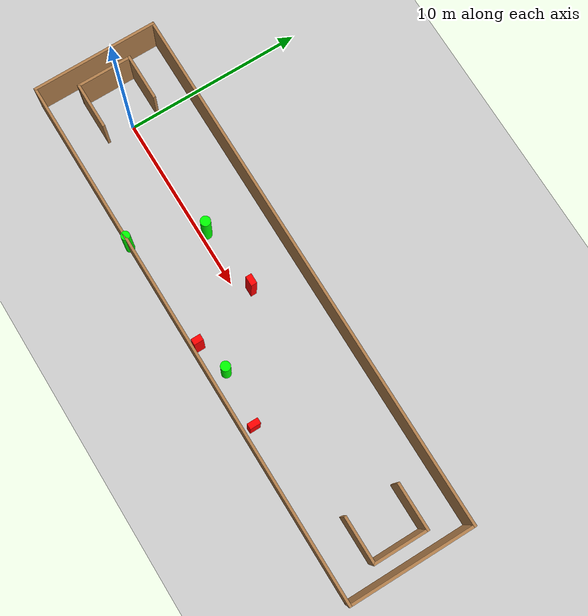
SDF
<sdf version="1.7">
 <world name="default">
  <light name="sun" type="directional">
   <pose>0 0 10 0 -0 0</pose>
   <diffuse>0.8 0.8 0.8 1</diffuse>
   <specular>0.2 0.2 0.2 1</specular>
   <attenuation>
    <range>1000</range>
    <constant>0.9</constant>
    <linear>0.01</linear>
    <quadratic>0.001</quadratic>
   </attenuation>
   <direction>-0.5 0.1 -0.9</direction>
   <spot><inner_angle>0</inner_angle><outer_angle>0</outer_angle><falloff>0</falloff></spot>
  </light>
  <model name="ground_plane">
   <static>1</static>
   <link name="link">
    <collision name="collision">
     <geometry><plane><normal>0 0 1</normal><size>100 100</size></plane></geometry>
     <surface>
      <contact><collide_bitmask>65535</collide_bitmask></contact>
      <friction><ode><mu>100</mu><mu2>50</mu2></ode></friction>
     </surface>
    </collision>
    <visual name="visual">
     <cast_shadows>0</cast_shadows>
     <geometry><plane><normal>0 0 1</normal><size>100 100</size></plane></geometry>
     <material>
      <script><uri>file://media/materials/scripts/gazebo.material</uri><name>Gazebo/Grey</name></script>
     </material>
    </visual>
   </link>
  </model>
  <gravity>0 0 -9.8</gravity>
  <magnetic_field>6e-06 2.3e-05 -4.2e-05</magnetic_field>
  <atmosphere type="adiabatic"/>
  <physics type="ode">
   <max_step_size>0.001</max_step_size>
   <real_time_factor>1</real_time_factor>
   <real_time_update_rate>1000</real_time_update_rate>
  </physics>
  <scene><ambient>0.4 0.4 0.4 1</ambient><background>0.7 0.7 0.7 1</background><shadows>1</shadows></scene>
  <spherical_coordinates>
   <surface_model>EARTH_WGS84</surface_model>
   <latitude_deg>0</latitude_deg>
   <longitude_deg>0</longitude_deg>
   <elevation>0</elevation>
   <heading_deg>0</heading_deg>
  </spherical_coordinates>
  <model name="my_base_walls">
   <link name="Wall_0">
    <collision name="Wall_0_Collision">
     <geometry><box><size>7.15 0.15 2.5</size></box></geometry>
     <pose>0 0 1.25 0 -0 0</pose>
    </collision>
    <visual name="Wall_0_Visual">
     <pose>0 0 1.25 0 -0 0</pose>
     <geometry><box><size>7.15 0.15 2.5</size></box></geometry>
     <material>
      <script><uri>file://media/materials/scripts/gazebo.material</uri><name>Gazebo/Wood</name></script>
      <ambient>1 1 1 1</ambient>
     </material>
     <meta><layer>0</layer></meta>
    </visual>
    <pose>-15 0 0 0 -0 1.5708</pose>
   </link>
   <link name="Wall_10">
    <collision name="Wall_10_Collision">
     <geometry><box><size>2.65 0.15 2.5</size></box></geometry>
     <pose>0 0 1.25 0 -0 0</pose>
    </collision>
    <visual name="Wall_10_Visual">
     <pose>0 0 1.25 0 -0 0</pose>
     <geometry><box><size>2.65 0.15 2.5</size></box></geometry>
     <material>
      <script><uri>file://media/materials/scripts/gazebo.material</uri><name>Gazebo/Wood</name></script>
      <ambient>1 1 1 1</ambient>
     </material>
     <meta><layer>0</layer></meta>
    </visual>
    <pose>-12.75 -1.5 0 0 -0 0</pose>
   </link>
   <link name="Wall_12">
    <collision name="Wall_12_Collision">
     <geometry><box><size>2.65 0.15 2.5</size></box></geometry>
     <pose>0 0 1.25 0 -0 0</pose>
    </collision>
    <visual name="Wall_12_Visual">
     <pose>0 0 1.25 0 -0 0</pose>
     <geometry><box><size>2.65 0.15 2.5</size></box></geometry>
     <material>
      <script><uri>file://media/materials/scripts/gazebo.material</uri><name>Gazebo/Wood</name></script>
      <ambient>1 1 1 1</ambient>
     </material>
     <meta><layer>0</layer></meta>
    </visual>
    <pose>-12.75 1.5 0 0 -0 0</pose>
   </link>
   <link name="Wall_14">
    <collision name="Wall_14_Collision">
     <geometry><box><size>3.15 0.15 2.5</size></box></geometry>
     <pose>0 0 1.25 0 -0 0</pose>
    </collision>
    <visual name="Wall_14_Visual">
     <pose>0 0 1.25 0 -0 0</pose>
     <geometry><box><size>3.15 0.15 2.5</size></box></geometry>
     <material>
      <script><uri>file://media/materials/scripts/gazebo.material</uri><name>Gazebo/Wood</name></script>
      <ambient>1 1 1 1</ambient>
     </material>
     <meta><layer>0</layer></meta>
    </visual>
    <pose>14 0 0 0 -0 -1.5708</pose>
   </link>
   <link name="Wall_15">
    <collision name="Wall_15_Collision">
     <geometry><box><size>2.65 0.15 2.5</size></box></geometry>
     <pose>0 0 1.25 0 -0 0</pose>
    </collision>
    <visual name="Wall_15_Visual">
     <pose>0 0 1.25 0 -0 0</pose>
     <geometry><box><size>2.65 0.15 2.5</size></box></geometry>
     <material>
      <script><uri>file://media/materials/scripts/gazebo.material</uri><name>Gazebo/Wood</name></script>
      <ambient>1 1 1 1</ambient>
     </material>
     <meta><layer>0</layer></meta>
    </visual>
    <pose>12.75 -1.5 0 0 -0 3.14159</pose>
   </link>
   <link name="Wall_17">
    <collision name="Wall_17_Collision">
     <geometry><box><size>2.65 0.15 2.5</size></box></geometry>
     <pose>0 0 1.25 0 -0 0</pose>
    </collision>
    <visual name="Wall_17_Visual">
     <pose>0 0 1.25 0 -0 0</pose>
     <geometry><box><size>2.65 0.15 2.5</size></box></geometry>
     <material>
      <script><uri>file://media/materials/scripts/gazebo.material</uri><name>Gazebo/Wood</name></script>
      <ambient>1 1 1 1</ambient>
     </material>
     <meta><layer>0</layer></meta>
    </visual>
    <pose>12.75 1.5 0 0 -0 3.14159</pose>
   </link>
   <link name="Wall_2">
    <collision name="Wall_2_Collision">
     <geometry><box><size>30.15 0.15 2.5</size></box></geometry>
     <pose>0 0 1.25 0 -0 0</pose>
    </collision>
    <visual name="Wall_2_Visual">
     <pose>0 0 1.25 0 -0 0</pose>
     <geometry><box><size>30.15 0.15 2.5</size></box></geometry>
     <material>
      <script><uri>file://media/materials/scripts/gazebo.material</uri><name>Gazebo/Wood</name></script>
      <ambient>1 1 1 1</ambient>
     </material>
     <meta><layer>0</layer></meta>
    </visual>
    <pose>-0 -3.5 0 0 -0 0</pose>
   </link>
   <link name="Wall_4">
    <collision name="Wall_4_Collision">
     <geometry><box><size>30.15 0.15 2.5</size></box></geometry>
     <pose>0 0 1.25 0 -0 0</pose>
    </collision>
    <visual name="Wall_4_Visual">
     <pose>0 0 1.25 0 -0 0</pose>
     <geometry><box><size>30.15 0.15 2.5</size></box></geometry>
     <material>
      <script><uri>file://media/materials/scripts/gazebo.material</uri><name>Gazebo/Wood</name></script>
      <ambient>1 1 1 1</ambient>
     </material>
     <meta><layer>0</layer></meta>
    </visual>
    <pose>-0 3.5 0 0 -0 0</pose>
   </link>
   <link name="Wall_6">
    <collision name="Wall_6_Collision">
     <geometry><box><size>7.15 0.15 2.5</size></box></geometry>
     <pose>0 0 1.25 0 -0 0</pose>
    </collision>
    <visual name="Wall_6_Visual">
     <pose>0 0 1.25 0 -0 0</pose>
     <geometry><box><size>7.15 0.15 2.5</size></box></geometry>
     <material>
      <script><uri>file://media/materials/scripts/gazebo.material</uri><name>Gazebo/Wood</name></script>
      <ambient>1 1 1 1</ambient>
     </material>
     <meta><layer>0</layer></meta>
    </visual>
    <pose>15 0 0 0 -0 -1.5708</pose>
   </link>
   <link name="Wall_9">
    <collision name="Wall_9_Collision">
     <geometry><box><size>3.15 0.15 2.5</size></box></geometry>
     <pose>0 0 1.25 0 -0 0</pose>
    </collision>
    <visual name="Wall_9_Visual">
     <pose>0 0 1.25 0 -0 0</pose>
     <geometry><box><size>3.15 0.15 2.5</size></box></geometry>
     <material>
      <script><uri>file://media/materials/scripts/gazebo.material</uri><name>Gazebo/Wood</name></script>
      <ambient>1 1 1 1</ambient>
     </material>
     <meta><layer>0</layer></meta>
    </visual>
    <pose>-14 0 0 0 -0 -1.5708</pose>
   </link>
   <static>1</static>
   <pose>11.5 0 0 0 -0 0</pose>
  </model>
  <model name="cylinder1">
   <static>1</static>
   <link name="link">
    <inertial>
     <mass>1</mass>
     <inertia><ixx>0.5</ixx><ixy>0</ixy><ixz>0</ixz><iyy>0.5</iyy><iyz>0</iyz><izz>1</izz></inertia>
    </inertial>
    <collision name="collision">
     <geometry><cylinder><radius>0.2465025130866856</radius><length>2.5</length></cylinder></geometry>
    </collision>
    <visual name="visual">
     <geometry><cylinder><radius>0.2465025130866856</radius><length>2.5</length></cylinder></geometry>
     <material>
      <ambient>0 1 0 1</ambient>
      <diffuse>0 1 0 1</diffuse>
      <specular>0.1 0.1 0.1 1</specular>
      <emissive>0 0 0 0</emissive>
     </material>
    </visual>
   </link>
   <pose>5.646841156024184 -3.4711612586969207 1.25 0 0 0</pose>
  </model>
  <model name="cylinder2">
   <static>1</static>
   <link name="link">
    <inertial>
     <mass>1</mass>
     <inertia><ixx>0.5</ixx><ixy>0</ixy><ixz>0</ixz><iyy>0.5</iyy><iyz>0</iyz><izz>1</izz></inertia>
    </inertial>
    <collision name="collision">
     <geometry><cylinder><radius>0.2783348389449972</radius><length>2.5</length></cylinder></geometry>
    </collision>
    <visual name="visual">
     <geometry><cylinder><radius>0.2783348389449972</radius><length>2.5</length></cylinder></geometry>
     <material>
      <ambient>0 1 0 1</ambient>
      <diffuse>0 1 0 1</diffuse>
      <specular>0.1 0.1 0.1 1</specular>
      <emissive>0 0 0 0</emissive>
     </material>
    </visual>
   </link>
   <pose>7.0927311446613075 0.32570556049470056 1.25 0 0 0</pose>
  </model>
  <model name="cylinder3">
   <static>1</static>
   <link name="link">
    <inertial>
     <mass>1</mass>
     <inertia><ixx>0.5</ixx><ixy>0</ixy><ixz>0</ixz><iyy>0.5</iyy><iyz>0</iyz><izz>1</izz></inertia>
    </inertial>
    <collision name="collision">
     <geometry><cylinder><radius>0.26785576918335274</radius><length>2.5</length></cylinder></geometry>
    </collision>
    <visual name="visual">
     <geometry><cylinder><radius>0.26785576918335274</radius><length>2.5</length></cylinder></geometry>
     <material>
      <ambient>0 1 0 1</ambient>
      <diffuse>0 1 0 1</diffuse>
      <specular>0.1 0.1 0.1 1</specular>
      <emissive>0 0 0 0</emissive>
     </material>
    </visual>
   </link>
   <pose>13.873318445107603 -2.6124917591283 1.25 0 0 0</pose>
  </model>
  <model name="box1">
   <static>1</static>
   <link name="link">
    <inertial>
     <mass>1</mass>
     <inertia><ixx>0.083</ixx><ixy>0</ixy><ixz>0</ixz><iyy>0.083</iyy><iyz>0</iyz><izz>0.083</izz></inertia>
    </inertial>
    <collision name="collision">
     <geometry><box><size>0.34451276197750097 0.529218881815758 2.5</size></box></geometry>
    </collision>
    <visual name="visual">
     <geometry><box><size>0.34451276197750097 0.529218881815758 2.5</size></box></geometry>
     <material>
      <ambient>1 0 0 1</ambient>
      <diffuse>1 0 0 1</diffuse>
      <specular>0.1 0.1 0.1 1</specular>
      <emissive>0 0 0 0</emissive>
     </material>
    </visual>
    <sensor name="my_contact" type="contact">
     <contact><collision>box_collision</collision><topic>__default_topic__</topic></contact>
    </sensor>
   </link>
   <pose>12.028584011768475 -3.1141231723743594 1.25 0 0 0</pose>
  </model>
  <model name="box2">
   <static>1</static>
   <link name="link">
    <inertial>
     <mass>1</mass>
     <inertia><ixx>0.083</ixx><ixy>0</ixy><ixz>0</ixz><iyy>0.083</iyy><iyz>0</iyz><izz>0.083</izz></inertia>
    </inertial>
    <collision name="collision">
     <geometry><box><size>0.32082222809114636 0.5998706456273031 2.5</size></box></geometry>
    </collision>
    <visual name="visual">
     <geometry><box><size>0.32082222809114636 0.5998706456273031 2.5</size></box></geometry>
     <material>
      <ambient>1 0 0 1</ambient>
      <diffuse>1 0 0 1</diffuse>
      <specular>0.1 0.1 0.1 1</specular>
      <emissive>0 0 0 0</emissive>
     </material>
    </visual>
    <sensor name="my_contact" type="contact">
     <contact><collision>box_collision</collision><topic>__default_topic__</topic></contact>
    </sensor>
   </link>
   <pose>16.960382864631963 -2.8871609744575326 1.25 0 0 0</pose>
  </model>
  <model name="box3">
   <static>1</static>
   <link name="link">
    <inertial>
     <mass>1</mass>
     <inertia><ixx>0.083</ixx><ixy>0</ixy><ixz>0</ixz><iyy>0.083</iyy><iyz>0</iyz><izz>0.083</izz></inertia>
    </inertial>
    <collision name="collision">
     <geometry><box><size>0.5501004069163581 0.3354877004289666 2.5</size></box></geometry>
    </collision>
    <visual name="visual">
     <geometry><box><size>0.5501004069163581 0.3354877004289666 2.5</size></box></geometry>
     <material>
      <ambient>1 0 0 1</ambient>
      <diffuse>1 0 0 1</diffuse>
      <specular>0.1 0.1 0.1 1</specular>
      <emissive>0 0 0 0</emissive>
     </material>
    </visual>
    <sensor name="my_contact" type="contact">
     <contact><collision>box_collision</collision><topic>__default_topic__</topic></contact>
    </sensor>
   </link>
   <pose>10.856868061906097 0.7079764334691818 1.25 0 0 0</pose>
  </model>
 </world>
</sdf>
